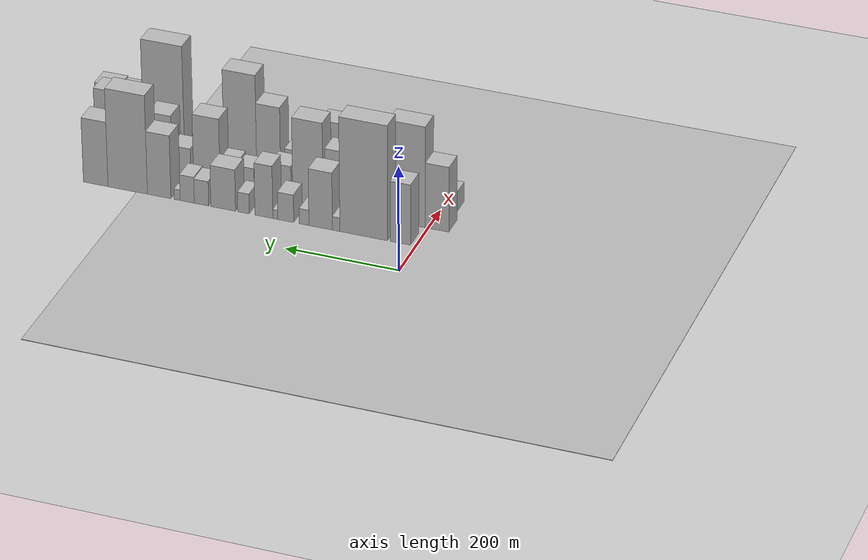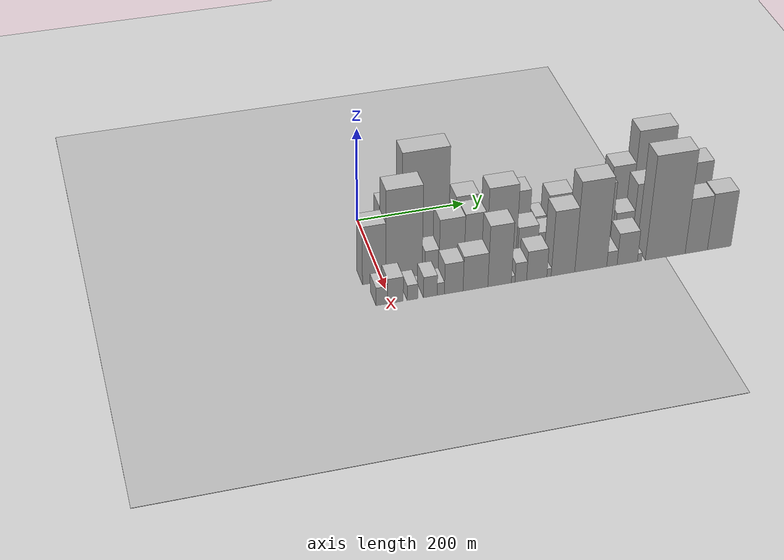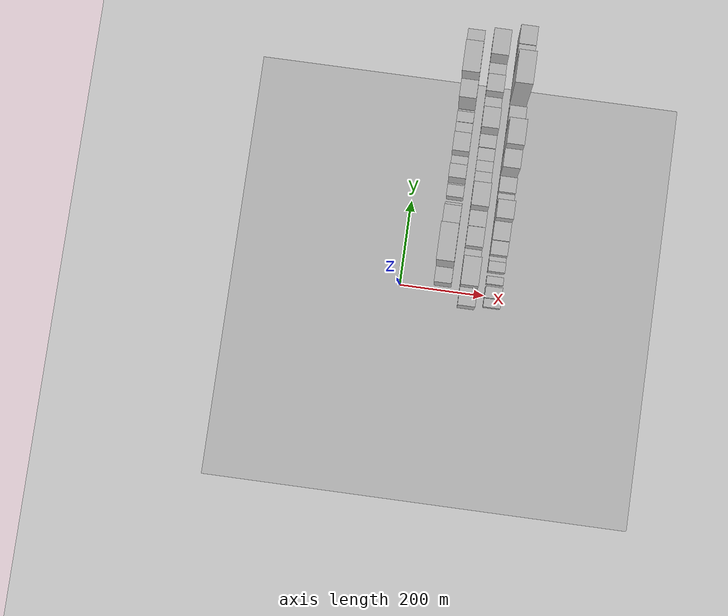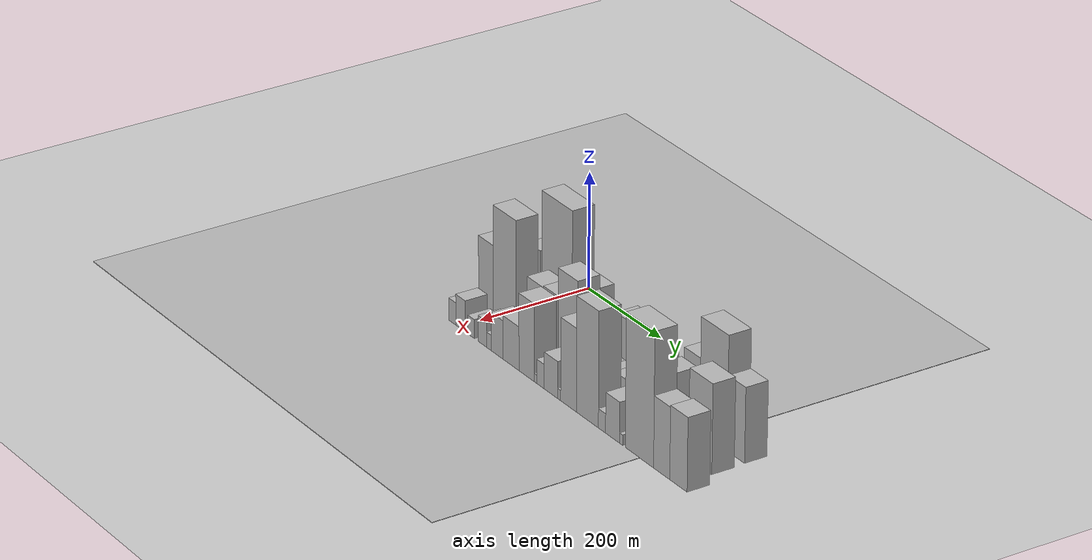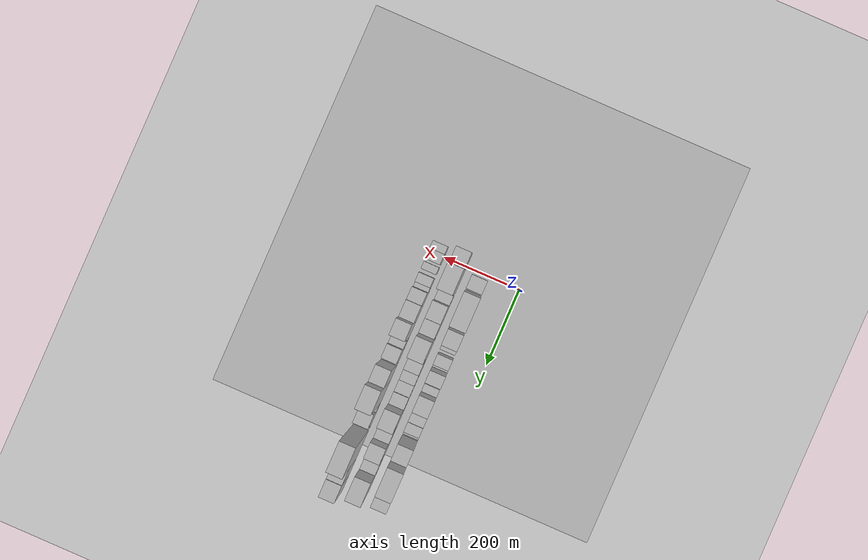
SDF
<sdf version="1.6">
 <world name="default">
  <include><name>ground_plane_1</name><uri>model://HANNAS_ground_plane</uri></include>
  <include>
   <name>ground_plane_2</name>
   <uri>model://HANNAS_ground_plane</uri>
   <pose>100 0 0  0 0 0</pose>
  </include>
  <model name="building_20">
   <static>1</static>
   <pose>100.0000 27.2043 0 0.000000 0.000000 0.000000</pose>
   <link name="link">
    <pose>0 0 58.50 0 0 0</pose>
    <collision name="collision"><geometry><box><size>40.0000 35.4669 117.0000</size></box></geometry></collision>
    <visual name="visual">
     <cast_shadows>0</cast_shadows>
     <geometry><box><size>40.0000 35.4669 117.0000</size></box></geometry>
     <material>
      <script>
       <uri>model://HANNAS_wall/materials/scripts</uri>
       <uri>model://HANNAS_wall/materials/textures</uri>
       <name>vrc/HANNAS_wall</name>
      </script>
     </material>
    </visual>
   </link>
  </model>
  <model name="building_21">
   <static>1</static>
   <pose>100.0000 92.3485 0 0.000000 0.000000 0.000000</pose>
   <link name="link">
    <pose>0 0 111.00 0 0 0</pose>
    <collision name="collision"><geometry><box><size>40.0000 84.8216 222.0000</size></box></geometry></collision>
    <visual name="visual">
     <cast_shadows>0</cast_shadows>
     <geometry><box><size>40.0000 84.8216 222.0000</size></box></geometry>
     <material>
      <script>
       <uri>model://HANNAS_wall/materials/scripts</uri>
       <uri>model://HANNAS_wall/materials/textures</uri>
       <name>vrc/HANNAS_wall</name>
      </script>
     </material>
    </visual>
   </link>
  </model>
  <model name="building_22">
   <static>1</static>
   <pose>100.0000 141.3330 0 0.000000 0.000000 0.000000</pose>
   <link name="link">
    <pose>0 0 13.50 0 0 0</pose>
    <collision name="collision"><geometry><box><size>40.0000 13.1473 27.0000</size></box></geometry></collision>
    <visual name="visual">
     <cast_shadows>0</cast_shadows>
     <geometry><box><size>40.0000 13.1473 27.0000</size></box></geometry>
     <material>
      <script>
       <uri>model://HANNAS_wall/materials/scripts</uri>
       <uri>model://HANNAS_wall/materials/textures</uri>
       <name>vrc/HANNAS_wall</name>
      </script>
     </material>
    </visual>
   </link>
  </model>
  <model name="building_23">
   <static>1</static>
   <pose>100.0000 168.8270 0 0.000000 0.000000 0.000000</pose>
   <link name="link">
    <pose>0 0 55.50 0 0 0</pose>
    <collision name="collision"><geometry><box><size>40.0000 41.8408 111.0000</size></box></geometry></collision>
    <visual name="visual">
     <cast_shadows>0</cast_shadows>
     <geometry><box><size>40.0000 41.8408 111.0000</size></box></geometry>
     <material>
      <script>
       <uri>model://HANNAS_wall/materials/scripts</uri>
       <uri>model://HANNAS_wall/materials/textures</uri>
       <name>vrc/HANNAS_wall</name>
      </script>
     </material>
    </visual>
   </link>
  </model>
  <model name="building_24">
   <static>1</static>
   <pose>100.0000 198.2511 0 0.000000 0.000000 0.000000</pose>
   <link name="link">
    <pose>0 0 15.00 0 0 0</pose>
    <collision name="collision"><geometry><box><size>40.0000 17.0074 30.0000</size></box></geometry></collision>
    <visual name="visual">
     <cast_shadows>0</cast_shadows>
     <geometry><box><size>40.0000 17.0074 30.0000</size></box></geometry>
     <material>
      <script>
       <uri>model://HANNAS_wall/materials/scripts</uri>
       <uri>model://HANNAS_wall/materials/textures</uri>
       <name>vrc/HANNAS_wall</name>
      </script>
     </material>
    </visual>
   </link>
  </model>
  <model name="building_25">
   <static>1</static>
   <pose>100.0000 231.0359 0 0.000000 0.000000 0.000000</pose>
   <link name="link">
    <pose>0 0 27.00 0 0 0</pose>
    <collision name="collision"><geometry><box><size>40.0000 28.5621 54.0000</size></box></geometry></collision>
    <visual name="visual">
     <cast_shadows>0</cast_shadows>
     <geometry><box><size>40.0000 28.5621 54.0000</size></box></geometry>
     <material>
      <script>
       <uri>model://HANNAS_wall/materials/scripts</uri>
       <uri>model://HANNAS_wall/materials/textures</uri>
       <name>vrc/HANNAS_wall</name>
      </script>
     </material>
    </visual>
   </link>
  </model>
  <model name="building_26">
   <static>1</static>
   <pose>100.0000 249.7770 0 0.000000 0.000000 0.000000</pose>
   <link name="link">
    <pose>0 0 9.00 0 0 0</pose>
    <collision name="collision"><geometry><box><size>40.0000 8.9201 18.0000</size></box></geometry></collision>
    <visual name="visual">
     <cast_shadows>0</cast_shadows>
     <geometry><box><size>40.0000 8.9201 18.0000</size></box></geometry>
     <material>
      <script>
       <uri>model://HANNAS_wall/materials/scripts</uri>
       <uri>model://HANNAS_wall/materials/textures</uri>
       <name>vrc/HANNAS_wall</name>
      </script>
     </material>
    </visual>
   </link>
  </model>
  <model name="building_27">
   <static>1</static>
   <pose>100.0000 270.2327 0 0.000000 0.000000 0.000000</pose>
   <link name="link">
    <pose>0 0 51.00 0 0 0</pose>
    <collision name="collision"><geometry><box><size>40.0000 31.9914 102.0000</size></box></geometry></collision>
    <visual name="visual">
     <cast_shadows>0</cast_shadows>
     <geometry><box><size>40.0000 31.9914 102.0000</size></box></geometry>
     <material>
      <script>
       <uri>model://HANNAS_wall/materials/scripts</uri>
       <uri>model://HANNAS_wall/materials/textures</uri>
       <name>vrc/HANNAS_wall</name>
      </script>
     </material>
    </visual>
   </link>
  </model>
  <model name="building_28">
   <static>1</static>
   <pose>100.0000 306.6255 0 0.000000 0.000000 0.000000</pose>
   <link name="link">
    <pose>0 0 19.50 0 0 0</pose>
    <collision name="collision"><geometry><box><size>40.0000 20.7942 39.0000</size></box></geometry></collision>
    <visual name="visual">
     <cast_shadows>0</cast_shadows>
     <geometry><box><size>40.0000 20.7942 39.0000</size></box></geometry>
     <material>
      <script>
       <uri>model://HANNAS_wall/materials/scripts</uri>
       <uri>model://HANNAS_wall/materials/textures</uri>
       <name>vrc/HANNAS_wall</name>
      </script>
     </material>
    </visual>
   </link>
  </model>
  <model name="building_29">
   <static>1</static>
   <pose>100.0000 343.2490 0 0.000000 0.000000 0.000000</pose>
   <link name="link">
    <pose>0 0 40.50 0 0 0</pose>
    <collision name="collision"><geometry><box><size>40.0000 44.4526 81.0000</size></box></geometry></collision>
    <visual name="visual">
     <cast_shadows>0</cast_shadows>
     <geometry><box><size>40.0000 44.4526 81.0000</size></box></geometry>
     <material>
      <script>
       <uri>model://HANNAS_wall/materials/scripts</uri>
       <uri>model://HANNAS_wall/materials/textures</uri>
       <name>vrc/HANNAS_wall</name>
      </script>
     </material>
    </visual>
   </link>
  </model>
  <model name="building_30">
   <static>1</static>
   <pose>100.0000 382.4299 0 0.000000 0.000000 0.000000</pose>
   <link name="link">
    <pose>0 0 24.00 0 0 0</pose>
    <collision name="collision"><geometry><box><size>40.0000 25.9092 48.0000</size></box></geometry></collision>
    <visual name="visual">
     <cast_shadows>0</cast_shadows>
     <geometry><box><size>40.0000 25.9092 48.0000</size></box></geometry>
     <material>
      <script>
       <uri>model://HANNAS_wall/materials/scripts</uri>
       <uri>model://HANNAS_wall/materials/textures</uri>
       <name>vrc/HANNAS_wall</name>
      </script>
     </material>
    </visual>
   </link>
  </model>
  <model name="building_31">
   <static>1</static>
   <pose>100.0000 408.2761 0 0.000000 0.000000 0.000000</pose>
   <link name="link">
    <pose>0 0 25.50 0 0 0</pose>
    <collision name="collision"><geometry><box><size>40.0000 25.7833 51.0000</size></box></geometry></collision>
    <visual name="visual">
     <cast_shadows>0</cast_shadows>
     <geometry><box><size>40.0000 25.7833 51.0000</size></box></geometry>
     <material>
      <script>
       <uri>model://HANNAS_wall/materials/scripts</uri>
       <uri>model://HANNAS_wall/materials/textures</uri>
       <name>vrc/HANNAS_wall</name>
      </script>
     </material>
    </visual>
   </link>
  </model>
  <model name="building_32">
   <static>1</static>
   <pose>100.0000 426.4053 0 0.000000 0.000000 0.000000</pose>
   <link name="link">
    <pose>0 0 10.50 0 0 0</pose>
    <collision name="collision"><geometry><box><size>40.0000 10.4751 21.0000</size></box></geometry></collision>
    <visual name="visual">
     <cast_shadows>0</cast_shadows>
     <geometry><box><size>40.0000 10.4751 21.0000</size></box></geometry>
     <material>
      <script>
       <uri>model://HANNAS_wall/materials/scripts</uri>
       <uri>model://HANNAS_wall/materials/textures</uri>
       <name>vrc/HANNAS_wall</name>
      </script>
     </material>
    </visual>
   </link>
  </model>
  <model name="building_33">
   <static>1</static>
   <pose>100.0000 459.0152 0 0.000000 0.000000 0.000000</pose>
   <link name="link">
    <pose>0 0 61.50 0 0 0</pose>
    <collision name="collision"><geometry><box><size>40.0000 42.7447 123.0000</size></box></geometry></collision>
    <visual name="visual">
     <cast_shadows>0</cast_shadows>
     <geometry><box><size>40.0000 42.7447 123.0000</size></box></geometry>
     <material>
      <script>
       <uri>model://HANNAS_wall/materials/scripts</uri>
       <uri>model://HANNAS_wall/materials/textures</uri>
       <name>vrc/HANNAS_wall</name>
      </script>
     </material>
    </visual>
   </link>
  </model>
  <model name="building_34">
   <static>1</static>
   <pose>100.0000 516.2452 0 0.000000 0.000000 0.000000</pose>
   <link name="link">
    <pose>0 0 96.00 0 0 0</pose>
    <collision name="collision"><geometry><box><size>40.0000 71.7153 192.0000</size></box></geometry></collision>
    <visual name="visual">
     <cast_shadows>0</cast_shadows>
     <geometry><box><size>40.0000 71.7153 192.0000</size></box></geometry>
     <material>
      <script>
       <uri>model://HANNAS_wall/materials/scripts</uri>
       <uri>model://HANNAS_wall/materials/textures</uri>
       <name>vrc/HANNAS_wall</name>
      </script>
     </material>
    </visual>
   </link>
  </model>
  <model name="building_35">
   <static>1</static>
   <pose>100.0000 574.6132 0 0.000000 0.000000 0.000000</pose>
   <link name="link">
    <pose>0 0 63.00 0 0 0</pose>
    <collision name="collision"><geometry><box><size>40.0000 45.0207 126.0000</size></box></geometry></collision>
    <visual name="visual">
     <cast_shadows>0</cast_shadows>
     <geometry><box><size>40.0000 45.0207 126.0000</size></box></geometry>
     <material>
      <script>
       <uri>model://HANNAS_wall/materials/scripts</uri>
       <uri>model://HANNAS_wall/materials/textures</uri>
       <name>vrc/HANNAS_wall</name>
      </script>
     </material>
    </visual>
   </link>
  </model>
  <model name="building_52">
   <static>1</static>
   <pose>160.0000 -15.4407 0 0.000000 0.000000 0.000000</pose>
   <link name="link">
    <pose>0 0 63.00 0 0 0</pose>
    <collision name="collision"><geometry><box><size>40.0000 41.7063 126.0000</size></box></geometry></collision>
    <visual name="visual">
     <cast_shadows>0</cast_shadows>
     <geometry><box><size>40.0000 41.7063 126.0000</size></box></geometry>
     <material>
      <script>
       <uri>model://HANNAS_wall/materials/scripts</uri>
       <uri>model://HANNAS_wall/materials/textures</uri>
       <name>vrc/HANNAS_wall</name>
      </script>
     </material>
    </visual>
   </link>
  </model>
  <model name="building_53">
   <static>1</static>
   <pose>160.0000 37.9441 0 0.000000 0.000000 0.000000</pose>
   <link name="link">
    <pose>0 0 97.50 0 0 0</pose>
    <collision name="collision"><geometry><box><size>40.0000 65.0634 195.0000</size></box></geometry></collision>
    <visual name="visual">
     <cast_shadows>0</cast_shadows>
     <geometry><box><size>40.0000 65.0634 195.0000</size></box></geometry>
     <material>
      <script>
       <uri>model://HANNAS_wall/materials/scripts</uri>
       <uri>model://HANNAS_wall/materials/textures</uri>
       <name>vrc/HANNAS_wall</name>
      </script>
     </material>
    </visual>
   </link>
  </model>
  <model name="building_54">
   <static>1</static>
   <pose>160.0000 88.3053 0 0.000000 0.000000 0.000000</pose>
   <link name="link">
    <pose>0 0 25.50 0 0 0</pose>
    <collision name="collision"><geometry><box><size>40.0000 25.6590 51.0000</size></box></geometry></collision>
    <visual name="visual">
     <cast_shadows>0</cast_shadows>
     <geometry><box><size>40.0000 25.6590 51.0000</size></box></geometry>
     <material>
      <script>
       <uri>model://HANNAS_wall/materials/scripts</uri>
       <uri>model://HANNAS_wall/materials/textures</uri>
       <name>vrc/HANNAS_wall</name>
      </script>
     </material>
    </visual>
   </link>
  </model>
  <model name="building_55">
   <static>1</static>
   <pose>160.0000 123.8936 0 0.000000 0.000000 0.000000</pose>
   <link name="link">
    <pose>0 0 57.00 0 0 0</pose>
    <collision name="collision"><geometry><box><size>40.0000 45.5176 114.0000</size></box></geometry></collision>
    <visual name="visual">
     <cast_shadows>0</cast_shadows>
     <geometry><box><size>40.0000 45.5176 114.0000</size></box></geometry>
     <material>
      <script>
       <uri>model://HANNAS_wall/materials/scripts</uri>
       <uri>model://HANNAS_wall/materials/textures</uri>
       <name>vrc/HANNAS_wall</name>
      </script>
     </material>
    </visual>
   </link>
  </model>
  <model name="building_56">
   <static>1</static>
   <pose>160.0000 165.1311 0 0.000000 0.000000 0.000000</pose>
   <link name="link">
    <pose>0 0 58.50 0 0 0</pose>
    <collision name="collision"><geometry><box><size>40.0000 36.9574 117.0000</size></box></geometry></collision>
    <visual name="visual">
     <cast_shadows>0</cast_shadows>
     <geometry><box><size>40.0000 36.9574 117.0000</size></box></geometry>
     <material>
      <script>
       <uri>model://HANNAS_wall/materials/scripts</uri>
       <uri>model://HANNAS_wall/materials/textures</uri>
       <name>vrc/HANNAS_wall</name>
      </script>
     </material>
    </visual>
   </link>
  </model>
  <model name="building_57">
   <static>1</static>
   <pose>160.0000 214.6850 0 0.000000 0.000000 0.000000</pose>
   <link name="link">
    <pose>0 0 82.50 0 0 0</pose>
    <collision name="collision"><geometry><box><size>40.0000 54.1504 165.0000</size></box></geometry></collision>
    <visual name="visual">
     <cast_shadows>0</cast_shadows>
     <geometry><box><size>40.0000 54.1504 165.0000</size></box></geometry>
     <material>
      <script>
       <uri>model://HANNAS_wall/materials/scripts</uri>
       <uri>model://HANNAS_wall/materials/textures</uri>
       <name>vrc/HANNAS_wall</name>
      </script>
     </material>
    </visual>
   </link>
  </model>
  <model name="building_58">
   <static>1</static>
   <pose>160.0000 263.2903 0 0.000000 0.000000 0.000000</pose>
   <link name="link">
    <pose>0 0 34.50 0 0 0</pose>
    <collision name="collision"><geometry><box><size>40.0000 37.0603 69.0000</size></box></geometry></collision>
    <visual name="visual">
     <cast_shadows>0</cast_shadows>
     <geometry><box><size>40.0000 37.0603 69.0000</size></box></geometry>
     <material>
      <script>
       <uri>model://HANNAS_wall/materials/scripts</uri>
       <uri>model://HANNAS_wall/materials/textures</uri>
       <name>vrc/HANNAS_wall</name>
      </script>
     </material>
    </visual>
   </link>
  </model>
  <model name="building_59">
   <static>1</static>
   <pose>160.0000 296.4189 0 0.000000 0.000000 0.000000</pose>
   <link name="link">
    <pose>0 0 25.50 0 0 0</pose>
    <collision name="collision"><geometry><box><size>40.0000 29.1971 51.0000</size></box></geometry></collision>
    <visual name="visual">
     <cast_shadows>0</cast_shadows>
     <geometry><box><size>40.0000 29.1971 51.0000</size></box></geometry>
     <material>
      <script>
       <uri>model://HANNAS_wall/materials/scripts</uri>
       <uri>model://HANNAS_wall/materials/textures</uri>
       <name>vrc/HANNAS_wall</name>
      </script>
     </material>
    </visual>
   </link>
  </model>
  <model name="building_60">
   <static>1</static>
   <pose>160.0000 326.1524 0 0.000000 0.000000 0.000000</pose>
   <link name="link">
    <pose>0 0 25.50 0 0 0</pose>
    <collision name="collision"><geometry><box><size>40.0000 30.2699 51.0000</size></box></geometry></collision>
    <visual name="visual">
     <cast_shadows>0</cast_shadows>
     <geometry><box><size>40.0000 30.2699 51.0000</size></box></geometry>
     <material>
      <script>
       <uri>model://HANNAS_wall/materials/scripts</uri>
       <uri>model://HANNAS_wall/materials/textures</uri>
       <name>vrc/HANNAS_wall</name>
      </script>
     </material>
    </visual>
   </link>
  </model>
  <model name="building_61">
   <static>1</static>
   <pose>160.0000 357.0681 0 0.000000 0.000000 0.000000</pose>
   <link name="link">
    <pose>0 0 28.50 0 0 0</pose>
    <collision name="collision"><geometry><box><size>40.0000 31.5616 57.0000</size></box></geometry></collision>
    <visual name="visual">
     <cast_shadows>0</cast_shadows>
     <geometry><box><size>40.0000 31.5616 57.0000</size></box></geometry>
     <material>
      <script>
       <uri>model://HANNAS_wall/materials/scripts</uri>
       <uri>model://HANNAS_wall/materials/textures</uri>
       <name>vrc/HANNAS_wall</name>
      </script>
     </material>
    </visual>
   </link>
  </model>
  <model name="building_62">
   <static>1</static>
   <pose>160.0000 396.8543 0 0.000000 0.000000 0.000000</pose>
   <link name="link">
    <pose>0 0 67.50 0 0 0</pose>
    <collision name="collision"><geometry><box><size>40.0000 48.0108 135.0000</size></box></geometry></collision>
    <visual name="visual">
     <cast_shadows>0</cast_shadows>
     <geometry><box><size>40.0000 48.0108 135.0000</size></box></geometry>
     <material>
      <script>
       <uri>model://HANNAS_wall/materials/scripts</uri>
       <uri>model://HANNAS_wall/materials/textures</uri>
       <name>vrc/HANNAS_wall</name>
      </script>
     </material>
    </visual>
   </link>
  </model>
  <model name="building_63">
   <static>1</static>
   <pose>160.0000 442.9675 0 0.000000 0.000000 0.000000</pose>
   <link name="link">
    <pose>0 0 33.00 0 0 0</pose>
    <collision name="collision"><geometry><box><size>40.0000 34.2156 66.0000</size></box></geometry></collision>
    <visual name="visual">
     <cast_shadows>0</cast_shadows>
     <geometry><box><size>40.0000 34.2156 66.0000</size></box></geometry>
     <material>
      <script>
       <uri>model://HANNAS_wall/materials/scripts</uri>
       <uri>model://HANNAS_wall/materials/textures</uri>
       <name>vrc/HANNAS_wall</name>
      </script>
     </material>
    </visual>
   </link>
  </model>
  <model name="building_64">
   <static>1</static>
   <pose>160.0000 480.2894 0 0.000000 0.000000 0.000000</pose>
   <link name="link">
    <pose>0 0 61.50 0 0 0</pose>
    <collision name="collision"><geometry><box><size>40.0000 40.4282 123.0000</size></box></geometry></collision>
    <visual name="visual">
     <cast_shadows>0</cast_shadows>
     <geometry><box><size>40.0000 40.4282 123.0000</size></box></geometry>
     <material>
      <script>
       <uri>model://HANNAS_wall/materials/scripts</uri>
       <uri>model://HANNAS_wall/materials/textures</uri>
       <name>vrc/HANNAS_wall</name>
      </script>
     </material>
    </visual>
   </link>
  </model>
  <model name="building_65">
   <static>1</static>
   <pose>160.0000 520.0435 0 0.000000 0.000000 0.000000</pose>
   <link name="link">
    <pose>0 0 36.00 0 0 0</pose>
    <collision name="collision"><geometry><box><size>40.0000 39.0801 72.0000</size></box></geometry></collision>
    <visual name="visual">
     <cast_shadows>0</cast_shadows>
     <geometry><box><size>40.0000 39.0801 72.0000</size></box></geometry>
     <material>
      <script>
       <uri>model://HANNAS_wall/materials/scripts</uri>
       <uri>model://HANNAS_wall/materials/textures</uri>
       <name>vrc/HANNAS_wall</name>
      </script>
     </material>
    </visual>
   </link>
  </model>
  <model name="building_66">
   <static>1</static>
   <pose>160.0000 569.5487 0 0.000000 0.000000 0.000000</pose>
   <link name="link">
    <pose>0 0 75.00 0 0 0</pose>
    <collision name="collision"><geometry><box><size>40.0000 59.9302 150.0000</size></box></geometry></collision>
    <visual name="visual">
     <cast_shadows>0</cast_shadows>
     <geometry><box><size>40.0000 59.9302 150.0000</size></box></geometry>
     <material>
      <script>
       <uri>model://HANNAS_wall/materials/scripts</uri>
       <uri>model://HANNAS_wall/materials/textures</uri>
       <name>vrc/HANNAS_wall</name>
      </script>
     </material>
    </visual>
   </link>
  </model>
  <model name="building_84">
   <static>1</static>
   <pose>220.0000 -17.4102 0 0.000000 0.000000 0.000000</pose>
   <link name="link">
    <pose>0 0 19.50 0 0 0</pose>
    <collision name="collision"><geometry><box><size>40.0000 20.5329 39.0000</size></box></geometry></collision>
    <visual name="visual">
     <cast_shadows>0</cast_shadows>
     <geometry><box><size>40.0000 20.5329 39.0000</size></box></geometry>
     <material>
      <script>
       <uri>model://HANNAS_wall/materials/scripts</uri>
       <uri>model://HANNAS_wall/materials/textures</uri>
       <name>vrc/HANNAS_wall</name>
      </script>
     </material>
    </visual>
   </link>
  </model>
  <model name="building_85">
   <static>1</static>
   <pose>220.0000 6.5719 0 0.000000 0.000000 0.000000</pose>
   <link name="link">
    <pose>0 0 27.00 0 0 0</pose>
    <collision name="collision"><geometry><box><size>40.0000 27.4313 54.0000</size></box></geometry></collision>
    <visual name="visual">
     <cast_shadows>0</cast_shadows>
     <geometry><box><size>40.0000 27.4313 54.0000</size></box></geometry>
     <material>
      <script>
       <uri>model://HANNAS_wall/materials/scripts</uri>
       <uri>model://HANNAS_wall/materials/textures</uri>
       <name>vrc/HANNAS_wall</name>
      </script>
     </material>
    </visual>
   </link>
  </model>
  <model name="building_86">
   <static>1</static>
   <pose>220.0000 36.7183 0 0.000000 0.000000 0.000000</pose>
   <link name="link">
    <pose>0 0 16.50 0 0 0</pose>
    <collision name="collision"><geometry><box><size>40.0000 18.8615 33.0000</size></box></geometry></collision>
    <visual name="visual">
     <cast_shadows>0</cast_shadows>
     <geometry><box><size>40.0000 18.8615 33.0000</size></box></geometry>
     <material>
      <script>
       <uri>model://HANNAS_wall/materials/scripts</uri>
       <uri>model://HANNAS_wall/materials/textures</uri>
       <name>vrc/HANNAS_wall</name>
      </script>
     </material>
    </visual>
   </link>
  </model>
  <model name="building_87">
   <static>1</static>
   <pose>220.0000 68.3978 0 0.000000 0.000000 0.000000</pose>
   <link name="link">
    <pose>0 0 22.50 0 0 0</pose>
    <collision name="collision"><geometry><box><size>40.0000 24.4976 45.0000</size></box></geometry></collision>
    <visual name="visual">
     <cast_shadows>0</cast_shadows>
     <geometry><box><size>40.0000 24.4976 45.0000</size></box></geometry>
     <material>
      <script>
       <uri>model://HANNAS_wall/materials/scripts</uri>
       <uri>model://HANNAS_wall/materials/textures</uri>
       <name>vrc/HANNAS_wall</name>
      </script>
     </material>
    </visual>
   </link>
  </model>
  <model name="building_88">
   <static>1</static>
   <pose>220.0000 87.0876 0 0.000000 0.000000 0.000000</pose>
   <link name="link">
    <pose>0 0 13.50 0 0 0</pose>
    <collision name="collision"><geometry><box><size>40.0000 12.8821 27.0000</size></box></geometry></collision>
    <visual name="visual">
     <cast_shadows>0</cast_shadows>
     <geometry><box><size>40.0000 12.8821 27.0000</size></box></geometry>
     <material>
      <script>
       <uri>model://HANNAS_wall/materials/scripts</uri>
       <uri>model://HANNAS_wall/materials/textures</uri>
       <name>vrc/HANNAS_wall</name>
      </script>
     </material>
    </visual>
   </link>
  </model>
  <model name="building_89">
   <static>1</static>
   <pose>220.0000 110.2400 0 0.000000 0.000000 0.000000</pose>
   <link name="link">
    <pose>0 0 33.00 0 0 0</pose>
    <collision name="collision"><geometry><box><size>40.0000 33.4228 66.0000</size></box></geometry></collision>
    <visual name="visual">
     <cast_shadows>0</cast_shadows>
     <geometry><box><size>40.0000 33.4228 66.0000</size></box></geometry>
     <material>
      <script>
       <uri>model://HANNAS_wall/materials/scripts</uri>
       <uri>model://HANNAS_wall/materials/textures</uri>
       <name>vrc/HANNAS_wall</name>
      </script>
     </material>
    </visual>
   </link>
  </model>
  <model name="building_90">
   <static>1</static>
   <pose>220.0000 149.3090 0 0.000000 0.000000 0.000000</pose>
   <link name="link">
    <pose>0 0 37.50 0 0 0</pose>
    <collision name="collision"><geometry><box><size>40.0000 44.7152 75.0000</size></box></geometry></collision>
    <visual name="visual">
     <cast_shadows>0</cast_shadows>
     <geometry><box><size>40.0000 44.7152 75.0000</size></box></geometry>
     <material>
      <script>
       <uri>model://HANNAS_wall/materials/scripts</uri>
       <uri>model://HANNAS_wall/materials/textures</uri>
       <name>vrc/HANNAS_wall</name>
      </script>
     </material>
    </visual>
   </link>
  </model>
  <model name="building_91">
   <static>1</static>
   <pose>220.0000 192.9752 0 0.000000 0.000000 0.000000</pose>
   <link name="link">
    <pose>0 0 66.00 0 0 0</pose>
    <collision name="collision"><geometry><box><size>40.0000 42.6171 132.0000</size></box></geometry></collision>
    <visual name="visual">
     <cast_shadows>0</cast_shadows>
     <geometry><box><size>40.0000 42.6171 132.0000</size></box></geometry>
     <material>
      <script>
       <uri>model://HANNAS_wall/materials/scripts</uri>
       <uri>model://HANNAS_wall/materials/textures</uri>
       <name>vrc/HANNAS_wall</name>
      </script>
     </material>
    </visual>
   </link>
  </model>
  <model name="building_92">
   <static>1</static>
   <pose>220.0000 217.5393 0 0.000000 0.000000 0.000000</pose>
   <link name="link">
    <pose>0 0 7.50 0 0 0</pose>
    <collision name="collision"><geometry><box><size>40.0000 6.5111 15.0000</size></box></geometry></collision>
    <visual name="visual">
     <cast_shadows>0</cast_shadows>
     <geometry><box><size>40.0000 6.5111 15.0000</size></box></geometry>
     <material>
      <script>
       <uri>model://HANNAS_wall/materials/scripts</uri>
       <uri>model://HANNAS_wall/materials/textures</uri>
       <name>vrc/HANNAS_wall</name>
      </script>
     </material>
    </visual>
   </link>
  </model>
  <model name="building_93">
   <static>1</static>
   <pose>220.0000 231.3935 0 0.000000 0.000000 0.000000</pose>
   <link name="link">
    <pose>0 0 21.00 0 0 0</pose>
    <collision name="collision"><geometry><box><size>40.0000 21.1973 42.0000</size></box></geometry></collision>
    <visual name="visual">
     <cast_shadows>0</cast_shadows>
     <geometry><box><size>40.0000 21.1973 42.0000</size></box></geometry>
     <material>
      <script>
       <uri>model://HANNAS_wall/materials/scripts</uri>
       <uri>model://HANNAS_wall/materials/textures</uri>
       <name>vrc/HANNAS_wall</name>
      </script>
     </material>
    </visual>
   </link>
  </model>
  <model name="building_94">
   <static>1</static>
   <pose>220.0000 260.5149 0 0.000000 0.000000 0.000000</pose>
   <link name="link">
    <pose>0 0 31.50 0 0 0</pose>
    <collision name="collision"><geometry><box><size>40.0000 37.0454 63.0000</size></box></geometry></collision>
    <visual name="visual">
     <cast_shadows>0</cast_shadows>
     <geometry><box><size>40.0000 37.0454 63.0000</size></box></geometry>
     <material>
      <script>
       <uri>model://HANNAS_wall/materials/scripts</uri>
       <uri>model://HANNAS_wall/materials/textures</uri>
       <name>vrc/HANNAS_wall</name>
      </script>
     </material>
    </visual>
   </link>
  </model>
  <model name="building_95">
   <static>1</static>
   <pose>220.0000 282.9772 0 0.000000 0.000000 0.000000</pose>
   <link name="link">
    <pose>0 0 9.00 0 0 0</pose>
    <collision name="collision"><geometry><box><size>40.0000 7.8792 18.0000</size></box></geometry></collision>
    <visual name="visual">
     <cast_shadows>0</cast_shadows>
     <geometry><box><size>40.0000 7.8792 18.0000</size></box></geometry>
     <material>
      <script>
       <uri>model://HANNAS_wall/materials/scripts</uri>
       <uri>model://HANNAS_wall/materials/textures</uri>
       <name>vrc/HANNAS_wall</name>
      </script>
     </material>
    </visual>
   </link>
  </model>
  <model name="building_96">
   <static>1</static>
   <pose>220.0000 308.5868 0 0.000000 0.000000 0.000000</pose>
   <link name="link">
    <pose>0 0 70.50 0 0 0</pose>
    <collision name="collision"><geometry><box><size>40.0000 43.3400 141.0000</size></box></geometry></collision>
    <visual name="visual">
     <cast_shadows>0</cast_shadows>
     <geometry><box><size>40.0000 43.3400 141.0000</size></box></geometry>
     <material>
      <script>
       <uri>model://HANNAS_wall/materials/scripts</uri>
       <uri>model://HANNAS_wall/materials/textures</uri>
       <name>vrc/HANNAS_wall</name>
      </script>
     </material>
    </visual>
   </link>
  </model>
  <model name="building_97">
   <static>1</static>
   <pose>220.0000 359.8789 0 0.000000 0.000000 0.000000</pose>
   <link name="link">
    <pose>0 0 97.50 0 0 0</pose>
    <collision name="collision"><geometry><box><size>40.0000 59.2442 195.0000</size></box></geometry></collision>
    <visual name="visual">
     <cast_shadows>0</cast_shadows>
     <geometry><box><size>40.0000 59.2442 195.0000</size></box></geometry>
     <material>
      <script>
       <uri>model://HANNAS_wall/materials/scripts</uri>
       <uri>model://HANNAS_wall/materials/textures</uri>
       <name>vrc/HANNAS_wall</name>
      </script>
     </material>
    </visual>
   </link>
  </model>
  <model name="building_98">
   <static>1</static>
   <pose>220.0000 399.1156 0 0.000000 0.000000 0.000000</pose>
   <link name="link">
    <pose>0 0 16.50 0 0 0</pose>
    <collision name="collision"><geometry><box><size>40.0000 19.2291 33.0000</size></box></geometry></collision>
    <visual name="visual">
     <cast_shadows>0</cast_shadows>
     <geometry><box><size>40.0000 19.2291 33.0000</size></box></geometry>
     <material>
      <script>
       <uri>model://HANNAS_wall/materials/scripts</uri>
       <uri>model://HANNAS_wall/materials/textures</uri>
       <name>vrc/HANNAS_wall</name>
      </script>
     </material>
    </visual>
   </link>
  </model>
  <model name="building_99">
   <static>1</static>
   <pose>220.0000 427.6666 0 0.000000 0.000000 0.000000</pose>
   <link name="link">
    <pose>0 0 34.50 0 0 0</pose>
    <collision name="collision"><geometry><box><size>40.0000 37.8730 69.0000</size></box></geometry></collision>
    <visual name="visual">
     <cast_shadows>0</cast_shadows>
     <geometry><box><size>40.0000 37.8730 69.0000</size></box></geometry>
     <material>
      <script>
       <uri>model://HANNAS_wall/materials/scripts</uri>
       <uri>model://HANNAS_wall/materials/textures</uri>
       <name>vrc/HANNAS_wall</name>
      </script>
     </material>
    </visual>
   </link>
  </model>
  <model name="building_100">
   <static>1</static>
   <pose>220.0000 450.6023 0 0.000000 0.000000 0.000000</pose>
   <link name="link">
    <pose>0 0 9.00 0 0 0</pose>
    <collision name="collision"><geometry><box><size>40.0000 7.9983 18.0000</size></box></geometry></collision>
    <visual name="visual">
     <cast_shadows>0</cast_shadows>
     <geometry><box><size>40.0000 7.9983 18.0000</size></box></geometry>
     <material>
      <script>
       <uri>model://HANNAS_wall/materials/scripts</uri>
       <uri>model://HANNAS_wall/materials/textures</uri>
       <name>vrc/HANNAS_wall</name>
      </script>
     </material>
    </visual>
   </link>
  </model>
  <model name="building_101">
   <static>1</static>
   <pose>220.0000 499.0299 0 0.000000 0.000000 0.000000</pose>
   <link name="link">
    <pose>0 0 112.50 0 0 0</pose>
    <collision name="collision"><geometry><box><size>40.0000 74.8569 225.0000</size></box></geometry></collision>
    <visual name="visual">
     <cast_shadows>0</cast_shadows>
     <geometry><box><size>40.0000 74.8569 225.0000</size></box></geometry>
     <material>
      <script>
       <uri>model://HANNAS_wall/materials/scripts</uri>
       <uri>model://HANNAS_wall/materials/textures</uri>
       <name>vrc/HANNAS_wall</name>
      </script>
     </material>
    </visual>
   </link>
  </model>
  <model name="building_102">
   <static>1</static>
   <pose>220.0000 557.6275 0 0.000000 0.000000 0.000000</pose>
   <link name="link">
    <pose>0 0 60.00 0 0 0</pose>
    <collision name="collision"><geometry><box><size>40.0000 42.3383 120.0000</size></box></geometry></collision>
    <visual name="visual">
     <cast_shadows>0</cast_shadows>
     <geometry><box><size>40.0000 42.3383 120.0000</size></box></geometry>
     <material>
      <script>
       <uri>model://HANNAS_wall/materials/scripts</uri>
       <uri>model://HANNAS_wall/materials/textures</uri>
       <name>vrc/HANNAS_wall</name>
      </script>
     </material>
    </visual>
   </link>
  </model>
  <model name="building_103">
   <static>1</static>
   <pose>220.0000 601.3140 0 0.000000 0.000000 0.000000</pose>
   <link name="link">
    <pose>0 0 61.50 0 0 0</pose>
    <collision name="collision"><geometry><box><size>40.0000 45.0348 123.0000</size></box></geometry></collision>
    <visual name="visual">
     <cast_shadows>0</cast_shadows>
     <geometry><box><size>40.0000 45.0348 123.0000</size></box></geometry>
     <material>
      <script>
       <uri>model://HANNAS_wall/materials/scripts</uri>
       <uri>model://HANNAS_wall/materials/textures</uri>
       <name>vrc/HANNAS_wall</name>
      </script>
     </material>
    </visual>
   </link>
  </model>
 </world>
</sdf>
